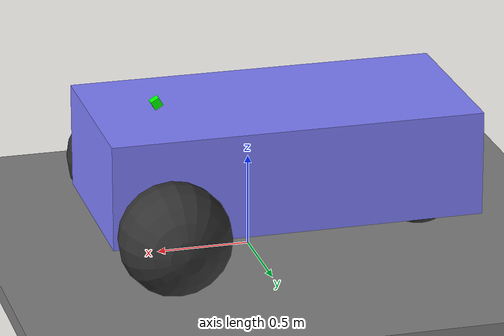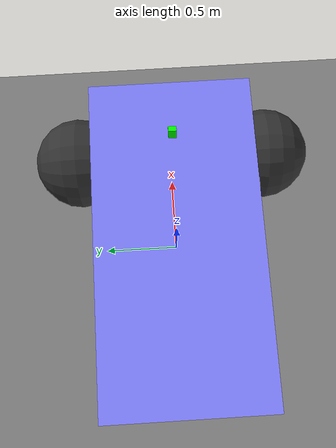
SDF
<?xml version="1.0" ?>
<sdf version="1.8">
  <world name="demo">
    <plugin
      filename="gz-sim-physics-system"
      name="gz::sim::systems::Physics">
    </plugin>
    <plugin
      filename="gz-sim-sensors-system"
      name="gz::sim::systems::Sensors">
      <render_engine>ogre2</render_engine>
    </plugin>
    <plugin
      filename="gz-sim-scene-broadcaster-system"
      name="gz::sim::systems::SceneBroadcaster">
    </plugin>
    <plugin
      filename="gz-sim-user-commands-system"
      name="gz::sim::systems::UserCommands">
    </plugin>
    <plugin
      filename="BasicSystem"
      name="ros_gz_example_gazebo::BasicSystem">
    </plugin>
    <plugin
      filename="FullSystem"
      name="ros_gz_example_gazebo::FullSystem">
    </plugin>

    <light name="sun" type="directional">
      <cast_shadows>true</cast_shadows>
      <pose>0 0 10 0 0 0</pose>
      <diffuse>0.8 0.8 0.8 1</diffuse>
      <specular>0.2 0.2 0.2 1</specular>
      <attenuation>
        <range>1000</range>
        <constant>0.9</constant>
        <linear>0.01</linear>
        <quadratic>0.001</quadratic>
      </attenuation>
      <direction>-0.5 0.1 -0.9</direction>
    </light>

    <model name="ground_plane">
      <static>true</static>
      <link name="link">
        <collision name="collision">
          <geometry>
            <box>
              <size>10 10 0.1</size>
            </box>
          </geometry>
        </collision>
        <visual name="visual">
          <geometry>
            <box>
              <size>10 10 0.1</size>
            </box>
          </geometry>
          <material>
            <ambient>0.5 0.5 0.5 1</ambient>
            <diffuse>0.5 0.5 0.5 1</diffuse>
            <pbr>
              <metal>
                <albedo_map>materials/textures/track.png</albedo_map>
              </metal>
            </pbr>
          </material>
        </visual>
      </link>
    </model>

    <model name="diff_drive">
      <self_collide>true</self_collide>
      <pose>0 0 0.35 0 0 0</pose>
      <include merge="true">
        <uri>package://ros_gz_example_description/models/diff_drive</uri>
      </include>

      <plugin
        filename="gz-sim-joint-state-publisher-system"
        name="gz::sim::systems::JointStatePublisher">
      </plugin>

      <plugin
        filename="gz-sim-pose-publisher-system"
        name="gz::sim::systems::PosePublisher">
        <publish_link_pose>true</publish_link_pose>
        <use_pose_vector_msg>true</use_pose_vector_msg>
        <static_publisher>true</static_publisher>
        <static_update_frequency>1</static_update_frequency>
      </plugin>

      <plugin
        filename="gz-sim-odometry-publisher-system"
        name="gz::sim::systems::OdometryPublisher">
        <odom_frame>diff_drive/odom</odom_frame>
        <robot_base_frame>diff_drive</robot_base_frame>
      </plugin>
    </model>

  </world>
</sdf>

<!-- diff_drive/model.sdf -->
<sdf version="1.8">
    <model name='diff_drive'>
      <link name='chassis'>
        <pose>-0.151427 -0 0.175 0 -0 0</pose>
        <inertial>
          <mass>1.14395</mass>
          <inertia>
            <ixx>0.126164</ixx>
            <ixy>0</ixy>
            <ixz>0</ixz>
            <iyy>0.416519</iyy>
            <iyz>0</iyz>
            <izz>0.481014</izz>
          </inertia>
        </inertial>
        <visual name='visual_chassis'>
          <geometry>
            <box>
              <size>2.01142 1 0.568726</size>
            </box>
          </geometry>
          <material>
            <ambient>0.5 0.5 1.0 1</ambient>
            <diffuse>0.5 0.5 1.0 1</diffuse>
            <specular>0.0 0.0 1.0 1</specular>
          </material>
        </visual>
        <collision name='collision_chassis'>
          <geometry>
            <box>
              <size>2.01142 1 0.568726</size>
            </box>
          </geometry>
        </collision>
      </link>

      <link name='left_wheel'>
        <pose>0.554283 0.625029 -0.025 -1.5707 0 0</pose>
        <inertial>
          <mass>2</mass>
          <inertia>
            <ixx>0.145833</ixx>
            <ixy>0</ixy>
            <ixz>0</ixz>
            <iyy>0.145833</iyy>
            <iyz>0</iyz>
            <izz>0.125</izz>
          </inertia>
        </inertial>
        <visual name='visual_left_wheel'>
          <geometry>
            <sphere>
              <radius>0.3</radius>
            </sphere>
          </geometry>
          <material>
            <ambient>0.2 0.2 0.2 1</ambient>
            <diffuse>0.2 0.2 0.2 1</diffuse>
            <specular>0.2 0.2 0.2 1</specular>
          </material>
        </visual>
        <collision name='collision_left_wheel'>
          <geometry>
            <sphere>
              <radius>0.3</radius>
            </sphere>
          </geometry>
        </collision>
      </link>

      <link name='right_wheel'>
        <pose>0.554282 -0.625029 -0.025 -1.5707 0 0</pose>
        <inertial>
          <mass>2</mass>
          <inertia>
            <ixx>0.145833</ixx>
            <ixy>0</ixy>
            <ixz>0</ixz>
            <iyy>0.145833</iyy>
            <iyz>0</iyz>
            <izz>0.125</izz>
          </inertia>
        </inertial>
        <visual name='visual_right_wheel'>
          <geometry>
            <sphere>
              <radius>0.3</radius>
            </sphere>
          </geometry>
          <material>
            <ambient>0.2 0.2 0.2 1</ambient>
            <diffuse>0.2 0.2 0.2 1</diffuse>
            <specular>0.2 0.2 0.2 1</specular>
          </material>
        </visual>
        <collision name='collision_right_wheel'>
          <geometry>
            <sphere>
              <radius>0.3</radius>
            </sphere>
          </geometry>
        </collision>
      </link>

      <link name='caster'>
        <pose>-0.957138 -0 -0.125 0 -0 0</pose>
        <inertial>
          <mass>1</mass>
          <inertia>
            <ixx>0.1</ixx>
            <ixy>0</ixy>
            <ixz>0</ixz>
            <iyy>0.1</iyy>
            <iyz>0</iyz>
            <izz>0.1</izz>
          </inertia>
        </inertial>
        <visual name='visual_caster'>
          <geometry>
            <sphere>
              <radius>0.2</radius>
            </sphere>
          </geometry>
          <material>
            <ambient>0.2 0.2 0.2 1</ambient>
            <diffuse>0.2 0.2 0.2 1</diffuse>
            <specular>0.2 0.2 0.2 1</specular>
          </material>
        </visual>
        <collision name='collision_caster'>
          <geometry>
            <sphere>
              <radius>0.2</radius>
            </sphere>
          </geometry>
        </collision>
      </link>

      <link name="camera_link">
        <pose>0.5 0 0.5 0 0.52 0</pose>
        <inertial>
          <mass>0.1</mass>
          <inertia>
            <ixx>0.0001</ixx>
            <iyy>0.0001</iyy>
            <izz>0.0001</izz>
            <ixy>0</ixy>
            <ixz>0</ixz>
            <iyz>0</iyz>
          </inertia>
        </inertial>
        <visual name="camera_visual">
          <geometry>
            <box>
              <size>0.05 0.05 0.05</size>
            </box>
          </geometry>
          <material>
            <ambient>0 1 0 1</ambient>
            <diffuse>0 1 0 1</diffuse>
          </material>
        </visual>
        <collision name="camera_collision">
          <geometry>
            <box>
              <size>0.05 0.05 0.05</size>
            </box>
          </geometry>
        </collision>
        <sensor name="camera_sensor" type="camera">
          <always_on>true</always_on>
          <update_rate>30</update_rate>
          <pose>0 0 0 0 0 0</pose>
          <camera>
            <horizontal_fov>1.047</horizontal_fov>
            <image>
              <width>640</width>
              <height>480</height>
              <format>R8G8B8</format>
            </image>
            <clip>
              <near>0.1</near>
              <far>100</far>
            </clip>
          </camera>
          <visualize>true</visualize>
          <topic>camera/image_raw</topic>
          <gz_frame_id>diff_drive/camera_link</gz_frame_id>
        </sensor>
      </link>

      <joint name="camera_joint" type="fixed">
        <parent>chassis</parent>
        <child>camera_link</child>
      </joint>

      <joint name='left_wheel_joint' type='revolute'>
        <parent>chassis</parent>
        <child>left_wheel</child>
        <axis>
          <xyz>0 0 1</xyz>
          <limit>
            <lower>-1.79769e+308</lower>
            <upper>1.79769e+308</upper>
          </limit>
        </axis>
      </joint>

      <joint name='right_wheel_joint' type='revolute'>
        <parent>chassis</parent>
        <child>right_wheel</child>
        <axis>
          <xyz>0 0 1</xyz>
          <limit>
            <lower>-1.79769e+308</lower>
            <upper>1.79769e+308</upper>
          </limit>
        </axis>
      </joint>

      <joint name='caster_wheel' type='ball'>
        <parent>chassis</parent>
        <child>caster</child>
      </joint>

      <plugin
        filename="ignition-gazebo-diff-drive-system"
        name="ignition::gazebo::systems::DiffDrive">
        <left_joint>left_wheel_joint</left_joint>
        <right_joint>right_wheel_joint</right_joint>
        <wheel_separation>1.25</wheel_separation>
        <wheel_radius>0.3</wheel_radius>
        <odom_publish_frequency>1</odom_publish_frequency>
        <max_linear_acceleration>1</max_linear_acceleration>
        <min_linear_acceleration>-1</min_linear_acceleration>
        <max_angular_acceleration>2</max_angular_acceleration>
        <min_angular_acceleration>-2</min_angular_acceleration>
        <max_linear_velocity>0.5</max_linear_velocity>
        <min_linear_velocity>-0.5</min_linear_velocity>
        <max_angular_velocity>1</max_angular_velocity>
        <min_angular_velocity>-1</min_angular_velocity>
      </plugin>
    </model>
</sdf>
